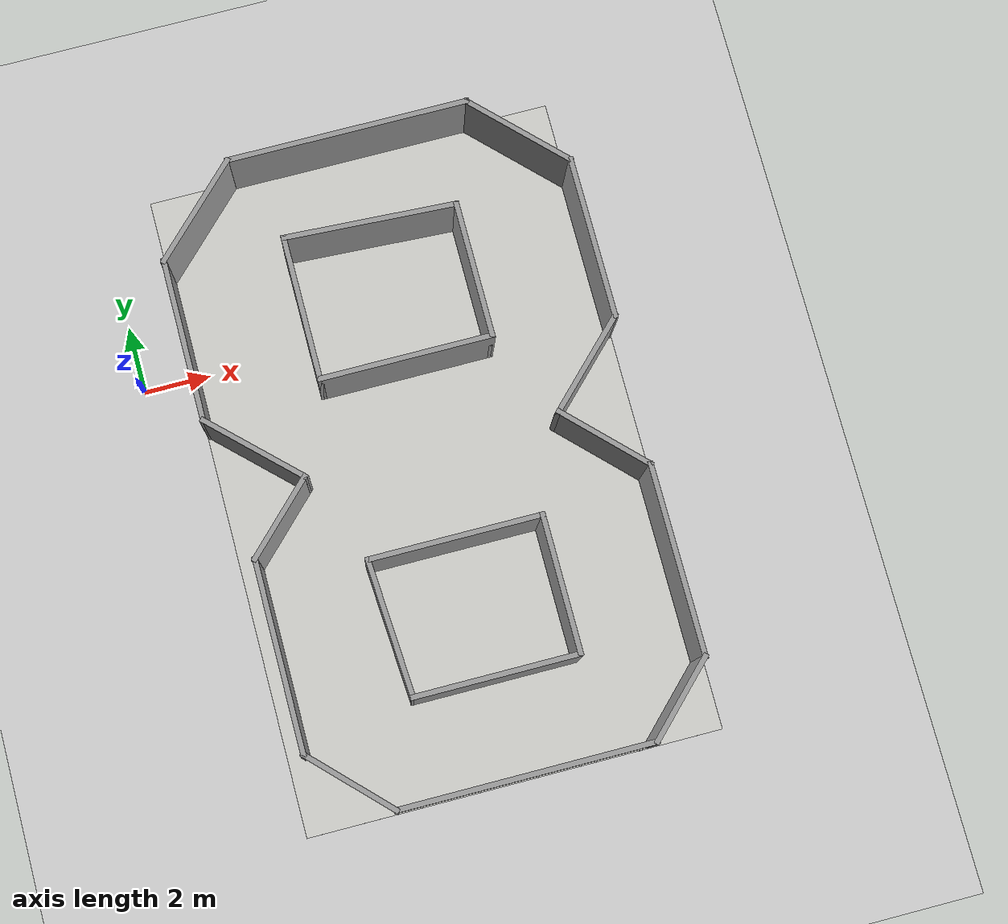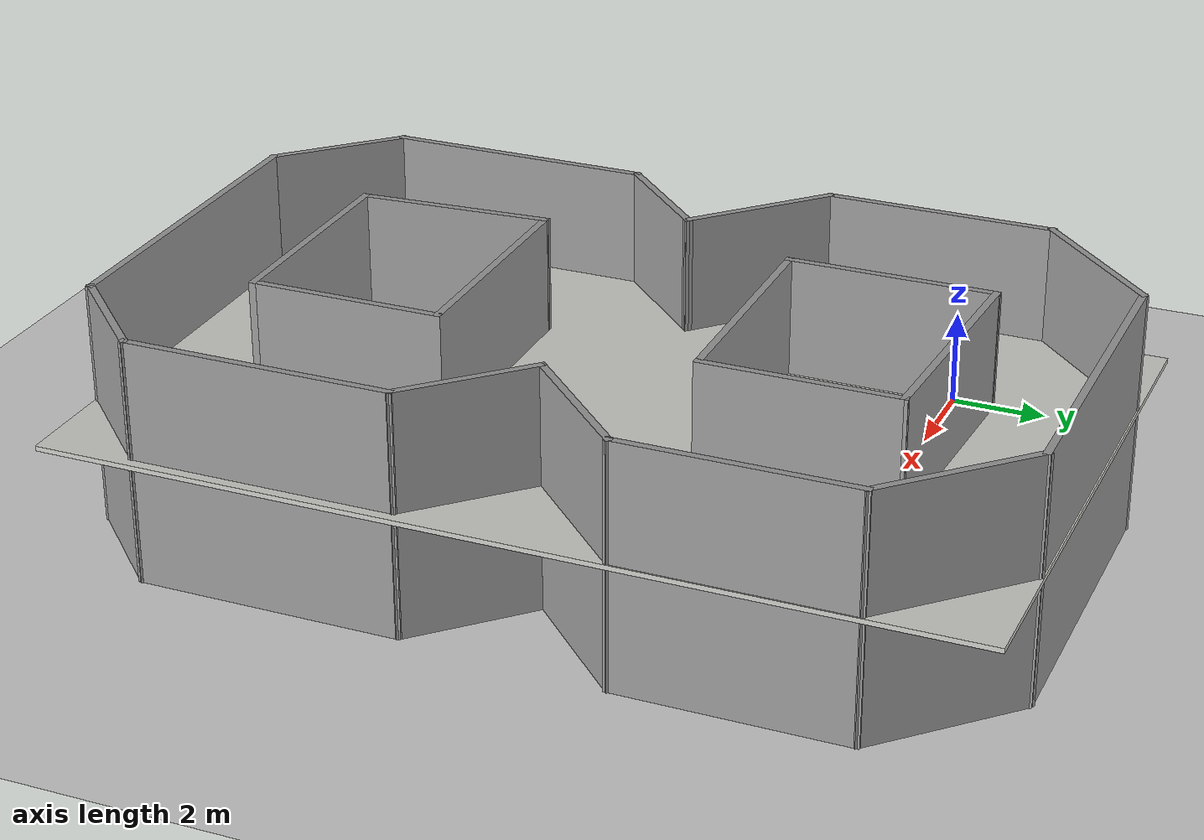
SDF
<sdf version="1.6">
 <world name="default">
  <light name="sun" type="directional">
   <pose>0 0 10 0 -0 0</pose>
   <diffuse>0.8 0.8 0.8 1</diffuse>
   <specular>0.1 0.1 0.1 1</specular>
   <attenuation>
    <range>1000</range>
    <constant>0.9</constant>
    <linear>0.01</linear>
    <quadratic>0.001</quadratic>
   </attenuation>
   <direction>-0.5 0.5 -1</direction>
  </light>
  <model name="ground_plane">
   <static>1</static>
   <link name="link">
    <collision name="collision">
     <geometry><plane><normal>0 0 1</normal><size>100 100</size></plane></geometry>
     <surface><friction><ode><mu>100</mu><mu2>50</mu2></ode></friction></surface>
    </collision>
    <visual name="visual">
     <cast_shadows>0</cast_shadows>
     <geometry><plane><normal>0 0 1</normal><size>100 100</size></plane></geometry>
     <material>
      <script><uri>file://media/materials/scripts/gazebo.material</uri><name>Gazebo/Grey</name></script>
     </material>
    </visual>
   </link>
  </model>
  <gravity>0 0 -9.8</gravity>
  <magnetic_field>6e-06 2.3e-05 -4.2e-05</magnetic_field>
  <atmosphere type="adiabatic"/>
  <physics name="default_physics" default="0" type="ode">
   <max_step_size>0.001</max_step_size>
   <real_time_factor>1</real_time_factor>
   <real_time_update_rate>1000</real_time_update_rate>
  </physics>
  <scene><ambient>0.4 0.4 0.4 1</ambient><background>0.7 0.7 0.7 1</background><shadows>1</shadows></scene>
  <spherical_coordinates>
   <surface_model>EARTH_WGS84</surface_model>
   <latitude_deg>0</latitude_deg>
   <longitude_deg>0</longitude_deg>
   <elevation>0</elevation>
   <heading_deg>0</heading_deg>
  </spherical_coordinates>
  <model name="figure_8">
   <pose>7.52457 -4.53661 0 0 -0 0</pose>
   <link name="Floor_1">
    <collision name="Floor_1_Collision">
     <geometry><box><size>11.7997 18.5767 0.1</size></box></geometry>
     <pose>0 0 0.05 0 -0 0</pose>
    </collision>
    <visual name="Floor_1_Visual">
     <pose>0 0 0.05 0 -0 0</pose>
     <geometry><box><size>11.7997 18.5767 0.1</size></box></geometry>
     <material>
      <script><uri>file://media/materials/scripts/gazebo.material</uri><name>Gazebo/CeilingTiled</name></script>
      <ambient>0 0 0 1</ambient>
     </material>
    </visual>
    <pose>-0 0 2.5 0 -0 0</pose>
   </link>
   <link name="Wall_42">
    <collision name="Wall_42_Collision">
     <geometry><box><size>4.75 0.15 2.5</size></box></geometry>
     <pose>0 0 1.25 0 -0 0</pose>
    </collision>
    <visual name="Wall_42_Visual">
     <pose>0 0 1.25 0 -0 0</pose>
     <geometry><box><size>4.75 0.15 2.5</size></box></geometry>
     <material>
      <script><uri>file://media/materials/scripts/gazebo.material</uri><name>Gazebo/Grey</name></script>
      <ambient>1 1 1 1</ambient>
     </material>
    </visual>
    <pose>-5.79381 4.51348 0 0 -0 1.5708</pose>
   </link>
   <link name="Wall_43">
    <collision name="Wall_43_Collision">
     <geometry><box><size>3.5 0.15 2.5</size></box></geometry>
     <pose>0 0 1.25 0 -0 0</pose>
    </collision>
    <visual name="Wall_43_Visual">
     <pose>0 0 1.25 0 -0 0</pose>
     <geometry><box><size>3.5 0.15 2.5</size></box></geometry>
     <material>
      <script><uri>file://media/materials/scripts/gazebo.material</uri><name>Gazebo/Grey</name></script>
      <ambient>1 1 1 1</ambient>
     </material>
    </visual>
    <pose>-4.6094 7.99788 0 0 -0 0.785398</pose>
   </link>
   <link name="Wall_44">
    <collision name="Wall_44_Collision">
     <geometry><box><size>7 0.15 2.5</size></box></geometry>
     <pose>0 0 1.25 0 -0 0</pose>
    </collision>
    <visual name="Wall_44_Visual">
     <pose>0 0 1.25 0 -0 0</pose>
     <geometry><box><size>7 0.15 2.5</size></box></geometry>
     <material>
      <script><uri>file://media/materials/scripts/gazebo.material</uri><name>Gazebo/Grey</name></script>
      <ambient>1 1 1 1</ambient>
     </material>
    </visual>
    <pose>-0 9.18229 0 0 -0 0</pose>
   </link>
   <link name="Wall_45">
    <collision name="Wall_45_Collision">
     <geometry><box><size>3.5 0.15 2.5</size></box></geometry>
     <pose>0 0 1.25 0 -0 0</pose>
    </collision>
    <visual name="Wall_45_Visual">
     <pose>0 0 1.25 0 -0 0</pose>
     <geometry><box><size>3.5 0.15 2.5</size></box></geometry>
     <material>
      <script><uri>file://media/materials/scripts/gazebo.material</uri><name>Gazebo/Grey</name></script>
      <ambient>1 1 1 1</ambient>
     </material>
    </visual>
    <pose>4.6094 7.99788 0 0 0 -0.785398</pose>
   </link>
   <link name="Wall_46">
    <collision name="Wall_46_Collision">
     <geometry><box><size>4.75 0.15 2.5</size></box></geometry>
     <pose>0 0 1.25 0 -0 0</pose>
    </collision>
    <visual name="Wall_46_Visual">
     <pose>0 0 1.25 0 -0 0</pose>
     <geometry><box><size>4.75 0.15 2.5</size></box></geometry>
     <material>
      <script><uri>file://media/materials/scripts/gazebo.material</uri><name>Gazebo/Grey</name></script>
      <ambient>1 1 1 1</ambient>
     </material>
    </visual>
    <pose>5.79381 4.51348 0 0 0 -1.5708</pose>
   </link>
   <link name="Wall_47">
    <collision name="Wall_47_Collision">
     <geometry><box><size>3.25 0.15 2.5</size></box></geometry>
     <pose>0 0 1.25 0 -0 0</pose>
    </collision>
    <visual name="Wall_47_Visual">
     <pose>0 0 1.25 0 -0 0</pose>
     <geometry><box><size>3.25 0.15 2.5</size></box></geometry>
     <material>
      <script><uri>file://media/materials/scripts/gazebo.material</uri><name>Gazebo/Grey</name></script>
      <ambient>1 1 1 1</ambient>
     </material>
    </visual>
    <pose>4.69779 1.11746 0 0 0 -2.35619</pose>
   </link>
   <link name="Wall_48">
    <collision name="Wall_48_Collision">
     <geometry><box><size>3 0.15 2.5</size></box></geometry>
     <pose>0 0 1.25 0 -0 0</pose>
    </collision>
    <visual name="Wall_48_Visual">
     <pose>0 0 1.25 0 -0 0</pose>
     <geometry><box><size>3 0.15 2.5</size></box></geometry>
     <material>
      <script><uri>file://media/materials/scripts/gazebo.material</uri><name>Gazebo/Grey</name></script>
      <ambient>1 1 1 1</ambient>
     </material>
    </visual>
    <pose>4.6094 -0.986181 0 0 0 -0.785398</pose>
   </link>
   <link name="Wall_49">
    <collision name="Wall_49_Collision">
     <geometry><box><size>5.5 0.15 2.5</size></box></geometry>
     <pose>0 0 1.25 0 -0 0</pose>
    </collision>
    <visual name="Wall_49_Visual">
     <pose>0 0 1.25 0 -0 0</pose>
     <geometry><box><size>5.5 0.15 2.5</size></box></geometry>
     <material>
      <script><uri>file://media/materials/scripts/gazebo.material</uri><name>Gazebo/Grey</name></script>
      <ambient>1 1 1 1</ambient>
     </material>
    </visual>
    <pose>5.61703 -4.66881 0 0 0 -1.5708</pose>
   </link>
   <link name="Wall_50">
    <collision name="Wall_50_Collision">
     <geometry><box><size>2.75 0.15 2.5</size></box></geometry>
     <pose>0 0 1.25 0 -0 0</pose>
    </collision>
    <visual name="Wall_50_Visual">
     <pose>0 0 1.25 0 -0 0</pose>
     <geometry><box><size>2.75 0.15 2.5</size></box></geometry>
     <material>
      <script><uri>file://media/materials/scripts/gazebo.material</uri><name>Gazebo/Grey</name></script>
      <ambient>1 1 1 1</ambient>
     </material>
    </visual>
    <pose>4.69779 -8.26305 0 0 0 -2.35619</pose>
   </link>
   <link name="Wall_51">
    <collision name="Wall_51_Collision">
     <geometry><box><size>7.25 0.15 2.5</size></box></geometry>
     <pose>0 0 1.25 0 -0 0</pose>
    </collision>
    <visual name="Wall_51_Visual">
     <pose>0 0 1.25 0 -0 0</pose>
     <geometry><box><size>7.25 0.15 2.5</size></box></geometry>
     <material>
      <script><uri>file://media/materials/scripts/gazebo.material</uri><name>Gazebo/Grey</name></script>
      <ambient>1 1 1 1</ambient>
     </material>
    </visual>
    <pose>0.228553 -9.18229 0 0 -0 3.14159</pose>
   </link>
   <link name="Wall_52">
    <collision name="Wall_52_Collision">
     <geometry><box><size>3 0.15 2.5</size></box></geometry>
     <pose>0 0 1.25 0 -0 0</pose>
    </collision>
    <visual name="Wall_52_Visual">
     <pose>0 0 1.25 0 -0 0</pose>
     <geometry><box><size>3 0.15 2.5</size></box></geometry>
     <material>
      <script><uri>file://media/materials/scripts/gazebo.material</uri><name>Gazebo/Grey</name></script>
      <ambient>1 1 1 1</ambient>
     </material>
    </visual>
    <pose>-4.32907 -8.17466 0 0 -0 2.35619</pose>
   </link>
   <link name="Wall_53">
    <collision name="Wall_53_Collision">
     <geometry><box><size>5.5 0.15 2.5</size></box></geometry>
     <pose>0 0 1.25 0 -0 0</pose>
    </collision>
    <visual name="Wall_53_Visual">
     <pose>0 0 1.25 0 -0 0</pose>
     <geometry><box><size>5.5 0.15 2.5</size></box></geometry>
     <material>
      <script><uri>file://media/materials/scripts/gazebo.material</uri><name>Gazebo/Grey</name></script>
      <ambient>1 1 1 1</ambient>
     </material>
    </visual>
    <pose>-5.3367 -4.49203 0 0 -0 1.5708</pose>
   </link>
   <link name="Wall_54">
    <collision name="Wall_54_Collision">
     <geometry><box><size>2.75 0.15 2.5</size></box></geometry>
     <pose>0 0 1.25 0 -0 0</pose>
    </collision>
    <visual name="Wall_54_Visual">
     <pose>0 0 1.25 0 -0 0</pose>
     <geometry><box><size>2.75 0.15 2.5</size></box></geometry>
     <material>
      <script><uri>file://media/materials/scripts/gazebo.material</uri><name>Gazebo/Grey</name></script>
      <ambient>1 1 1 1</ambient>
     </material>
    </visual>
    <pose>-4.41746 -0.897792 0 0 -0 0.785398</pose>
   </link>
   <link name="Wall_55">
    <collision name="Wall_55_Collision">
     <geometry><box><size>3.32407 0.15 2.5</size></box></geometry>
     <pose>0 0 1.25 0 -0 0</pose>
    </collision>
    <visual name="Wall_55_Visual">
     <pose>0 0 1.25 0 -0 0</pose>
     <geometry><box><size>3.32407 0.15 2.5</size></box></geometry>
     <material>
      <script><uri>file://media/materials/scripts/gazebo.material</uri><name>Gazebo/Grey</name></script>
      <ambient>1 1 1 1</ambient>
     </material>
    </visual>
    <pose>-4.64602 1.11746 0 0 -0 2.37927</pose>
   </link>
   <link name="Wall_57">
    <collision name="Wall_57_Collision">
     <geometry><box><size>4.25 0.15 2.5</size></box></geometry>
     <pose>0 0 1.25 0 -0 0</pose>
    </collision>
    <visual name="Wall_57_Visual">
     <pose>0 0 1.25 0 -0 0</pose>
     <geometry><box><size>4.25 0.15 2.5</size></box></geometry>
     <material>
      <script><uri>file://media/materials/scripts/gazebo.material</uri><name>Gazebo/Grey</name></script>
      <ambient>1 1 1 1</ambient>
     </material>
    </visual>
    <pose>-2.44792 4.57721 0 0 0 -1.5708</pose>
   </link>
   <link name="Wall_58">
    <collision name="Wall_58_Collision">
     <geometry><box><size>5 0.15 2.5</size></box></geometry>
     <pose>0 0 1.25 0 -0 0</pose>
    </collision>
    <visual name="Wall_58_Visual">
     <pose>0 0 1.25 0 -0 0</pose>
     <geometry><box><size>5 0.15 2.5</size></box></geometry>
     <material>
      <script><uri>file://media/materials/scripts/gazebo.material</uri><name>Gazebo/Grey</name></script>
      <ambient>1 1 1 1</ambient>
     </material>
    </visual>
    <pose>-0.022916 2.52721 0 0 -0 0</pose>
   </link>
   <link name="Wall_59">
    <collision name="Wall_59_Collision">
     <geometry><box><size>4 0.15 2.5</size></box></geometry>
     <pose>0 0 1.25 0 -0 0</pose>
    </collision>
    <visual name="Wall_59_Visual">
     <pose>0 0 1.25 0 -0 0</pose>
     <geometry><box><size>4 0.15 2.5</size></box></geometry>
     <material>
      <script><uri>file://media/materials/scripts/gazebo.material</uri><name>Gazebo/Grey</name></script>
      <ambient>1 1 1 1</ambient>
     </material>
    </visual>
    <pose>2.40208 4.45221 0 0 -0 1.5708</pose>
   </link>
   <link name="Wall_60">
    <collision name="Wall_60_Collision">
     <geometry><box><size>5.00644 0.15 2.5</size></box></geometry>
     <pose>0 0 1.25 0 -0 0</pose>
    </collision>
    <visual name="Wall_60_Visual">
     <pose>0 0 1.25 0 -0 0</pose>
     <geometry><box><size>5.00644 0.15 2.5</size></box></geometry>
     <material>
      <script><uri>file://media/materials/scripts/gazebo.material</uri><name>Gazebo/Grey</name></script>
      <ambient>1 1 1 1</ambient>
     </material>
    </visual>
    <pose>-0.022916 6.50221 0 0 -0 3.09009</pose>
   </link>
   <link name="Wall_62">
    <collision name="Wall_62_Collision">
     <geometry><box><size>5 0.15 2.5</size></box></geometry>
     <pose>0 0 1.25 0 -0 0</pose>
    </collision>
    <visual name="Wall_62_Visual">
     <pose>0 0 1.25 0 -0 0</pose>
     <geometry><box><size>5 0.15 2.5</size></box></geometry>
     <material>
      <script><uri>file://media/materials/scripts/gazebo.material</uri><name>Gazebo/Grey</name></script>
      <ambient>1 1 1 1</ambient>
     </material>
    </visual>
    <pose>0.009588 -2.59312 0 0 -0 0</pose>
   </link>
   <link name="Wall_63">
    <collision name="Wall_63_Collision">
     <geometry><box><size>4 0.15 2.5</size></box></geometry>
     <pose>0 0 1.25 0 -0 0</pose>
    </collision>
    <visual name="Wall_63_Visual">
     <pose>0 0 1.25 0 -0 0</pose>
     <geometry><box><size>4 0.15 2.5</size></box></geometry>
     <material>
      <script><uri>file://media/materials/scripts/gazebo.material</uri><name>Gazebo/Grey</name></script>
      <ambient>1 1 1 1</ambient>
     </material>
    </visual>
    <pose>2.43459 -4.51812 0 0 0 -1.5708</pose>
   </link>
   <link name="Wall_64">
    <collision name="Wall_64_Collision">
     <geometry><box><size>4.75 0.15 2.5</size></box></geometry>
     <pose>0 0 1.25 0 -0 0</pose>
    </collision>
    <visual name="Wall_64_Visual">
     <pose>0 0 1.25 0 -0 0</pose>
     <geometry><box><size>4.75 0.15 2.5</size></box></geometry>
     <material>
      <script><uri>file://media/materials/scripts/gazebo.material</uri><name>Gazebo/Grey</name></script>
      <ambient>1 1 1 1</ambient>
     </material>
    </visual>
    <pose>0.134588 -6.44312 0 0 -0 3.14159</pose>
   </link>
   <link name="Wall_65">
    <collision name="Wall_65_Collision">
     <geometry><box><size>4.00811 0.15 2.5</size></box></geometry>
     <pose>0 0 1.25 0 -0 0</pose>
    </collision>
    <visual name="Wall_65_Visual">
     <pose>0 0 1.25 0 -0 0</pose>
     <geometry><box><size>4.00811 0.15 2.5</size></box></geometry>
     <material>
      <script><uri>file://media/materials/scripts/gazebo.material</uri><name>Gazebo/Grey</name></script>
      <ambient>1 1 1 1</ambient>
     </material>
    </visual>
    <pose>-2.29041 -4.51812 0 0 -0 1.63564</pose>
   </link>
   <link name="Wall_67">
    <collision name="Wall_67_Collision">
     <geometry><box><size>4.75 0.15 2.5</size></box></geometry>
     <pose>0 0 1.25 0 -0 0</pose>
    </collision>
    <visual name="Wall_67_Visual">
     <pose>0 0 1.25 0 -0 0</pose>
     <geometry><box><size>4.75 0.15 2.5</size></box></geometry>
     <material>
      <script><uri>file://media/materials/scripts/gazebo.material</uri><name>Gazebo/Grey</name></script>
      <ambient>1 1 1 1</ambient>
     </material>
    </visual>
    <pose>-5.79381 4.51348 2.5 0 -0 1.5708</pose>
   </link>
   <link name="Wall_68">
    <collision name="Wall_68_Collision">
     <geometry><box><size>3.5 0.15 2.5</size></box></geometry>
     <pose>0 0 1.25 0 -0 0</pose>
    </collision>
    <visual name="Wall_68_Visual">
     <pose>0 0 1.25 0 -0 0</pose>
     <geometry><box><size>3.5 0.15 2.5</size></box></geometry>
     <material>
      <script><uri>file://media/materials/scripts/gazebo.material</uri><name>Gazebo/Grey</name></script>
      <ambient>1 1 1 1</ambient>
     </material>
    </visual>
    <pose>-4.6094 7.99788 2.5 0 -0 0.785398</pose>
   </link>
   <link name="Wall_69">
    <collision name="Wall_69_Collision">
     <geometry><box><size>7 0.15 2.5</size></box></geometry>
     <pose>0 0 1.25 0 -0 0</pose>
    </collision>
    <visual name="Wall_69_Visual">
     <pose>0 0 1.25 0 -0 0</pose>
     <geometry><box><size>7 0.15 2.5</size></box></geometry>
     <material>
      <script><uri>file://media/materials/scripts/gazebo.material</uri><name>Gazebo/Grey</name></script>
      <ambient>1 1 1 1</ambient>
     </material>
    </visual>
    <pose>-0 9.18229 2.5 0 -0 0</pose>
   </link>
   <link name="Wall_70">
    <collision name="Wall_70_Collision">
     <geometry><box><size>3.5 0.15 2.5</size></box></geometry>
     <pose>0 0 1.25 0 -0 0</pose>
    </collision>
    <visual name="Wall_70_Visual">
     <pose>0 0 1.25 0 -0 0</pose>
     <geometry><box><size>3.5 0.15 2.5</size></box></geometry>
     <material>
      <script><uri>file://media/materials/scripts/gazebo.material</uri><name>Gazebo/Grey</name></script>
      <ambient>1 1 1 1</ambient>
     </material>
    </visual>
    <pose>4.6094 7.99788 2.5 0 0 -0.785398</pose>
   </link>
   <link name="Wall_71">
    <collision name="Wall_71_Collision">
     <geometry><box><size>4.75 0.15 2.5</size></box></geometry>
     <pose>0 0 1.25 0 -0 0</pose>
    </collision>
    <visual name="Wall_71_Visual">
     <pose>0 0 1.25 0 -0 0</pose>
     <geometry><box><size>4.75 0.15 2.5</size></box></geometry>
     <material>
      <script><uri>file://media/materials/scripts/gazebo.material</uri><name>Gazebo/Grey</name></script>
      <ambient>1 1 1 1</ambient>
     </material>
    </visual>
    <pose>5.79381 4.51348 2.5 0 0 -1.5708</pose>
   </link>
   <link name="Wall_72">
    <collision name="Wall_72_Collision">
     <geometry><box><size>3.25 0.15 2.5</size></box></geometry>
     <pose>0 0 1.25 0 -0 0</pose>
    </collision>
    <visual name="Wall_72_Visual">
     <pose>0 0 1.25 0 -0 0</pose>
     <geometry><box><size>3.25 0.15 2.5</size></box></geometry>
     <material>
      <script><uri>file://media/materials/scripts/gazebo.material</uri><name>Gazebo/Grey</name></script>
      <ambient>1 1 1 1</ambient>
     </material>
    </visual>
    <pose>4.69779 1.11746 2.5 0 0 -2.35619</pose>
   </link>
   <link name="Wall_73">
    <collision name="Wall_73_Collision">
     <geometry><box><size>3 0.15 2.5</size></box></geometry>
     <pose>0 0 1.25 0 -0 0</pose>
    </collision>
    <visual name="Wall_73_Visual">
     <pose>0 0 1.25 0 -0 0</pose>
     <geometry><box><size>3 0.15 2.5</size></box></geometry>
     <material>
      <script><uri>file://media/materials/scripts/gazebo.material</uri><name>Gazebo/Grey</name></script>
      <ambient>1 1 1 1</ambient>
     </material>
    </visual>
    <pose>4.6094 -0.986181 2.5 0 0 -0.785398</pose>
   </link>
   <link name="Wall_74">
    <collision name="Wall_74_Collision">
     <geometry><box><size>5.5 0.15 2.5</size></box></geometry>
     <pose>0 0 1.25 0 -0 0</pose>
    </collision>
    <visual name="Wall_74_Visual">
     <pose>0 0 1.25 0 -0 0</pose>
     <geometry><box><size>5.5 0.15 2.5</size></box></geometry>
     <material>
      <script><uri>file://media/materials/scripts/gazebo.material</uri><name>Gazebo/Grey</name></script>
      <ambient>1 1 1 1</ambient>
     </material>
    </visual>
    <pose>5.61703 -4.66881 2.5 0 0 -1.5708</pose>
   </link>
   <link name="Wall_75">
    <collision name="Wall_75_Collision">
     <geometry><box><size>2.75 0.15 2.5</size></box></geometry>
     <pose>0 0 1.25 0 -0 0</pose>
    </collision>
    <visual name="Wall_75_Visual">
     <pose>0 0 1.25 0 -0 0</pose>
     <geometry><box><size>2.75 0.15 2.5</size></box></geometry>
     <material>
      <script><uri>file://media/materials/scripts/gazebo.material</uri><name>Gazebo/Grey</name></script>
      <ambient>1 1 1 1</ambient>
     </material>
    </visual>
    <pose>4.69779 -8.26305 2.5 0 0 -2.35619</pose>
   </link>
   <link name="Wall_76">
    <collision name="Wall_76_Collision">
     <geometry><box><size>7.25 0.15 2.5</size></box></geometry>
     <pose>0 0 1.25 0 -0 0</pose>
    </collision>
    <visual name="Wall_76_Visual">
     <pose>0 0 1.25 0 -0 0</pose>
     <geometry><box><size>7.25 0.15 2.5</size></box></geometry>
     <material>
      <script><uri>file://media/materials/scripts/gazebo.material</uri><name>Gazebo/Grey</name></script>
      <ambient>1 1 1 1</ambient>
     </material>
    </visual>
    <pose>0.228553 -9.18229 2.5 0 -0 3.14159</pose>
   </link>
   <link name="Wall_77">
    <collision name="Wall_77_Collision">
     <geometry><box><size>3 0.15 2.5</size></box></geometry>
     <pose>0 0 1.25 0 -0 0</pose>
    </collision>
    <visual name="Wall_77_Visual">
     <pose>0 0 1.25 0 -0 0</pose>
     <geometry><box><size>3 0.15 2.5</size></box></geometry>
     <material>
      <script><uri>file://media/materials/scripts/gazebo.material</uri><name>Gazebo/Grey</name></script>
      <ambient>1 1 1 1</ambient>
     </material>
    </visual>
    <pose>-4.32907 -8.17466 2.5 0 -0 2.35619</pose>
   </link>
   <link name="Wall_78">
    <collision name="Wall_78_Collision">
     <geometry><box><size>5.5 0.15 2.5</size></box></geometry>
     <pose>0 0 1.25 0 -0 0</pose>
    </collision>
    <visual name="Wall_78_Visual">
     <pose>0 0 1.25 0 -0 0</pose>
     <geometry><box><size>5.5 0.15 2.5</size></box></geometry>
     <material>
      <script><uri>file://media/materials/scripts/gazebo.material</uri><name>Gazebo/Grey</name></script>
      <ambient>1 1 1 1</ambient>
     </material>
    </visual>
    <pose>-5.3367 -4.49203 2.5 0 -0 1.5708</pose>
   </link>
   <link name="Wall_79">
    <collision name="Wall_79_Collision">
     <geometry><box><size>2.75 0.15 2.5</size></box></geometry>
     <pose>0 0 1.25 0 -0 0</pose>
    </collision>
    <visual name="Wall_79_Visual">
     <pose>0 0 1.25 0 -0 0</pose>
     <geometry><box><size>2.75 0.15 2.5</size></box></geometry>
     <material>
      <script><uri>file://media/materials/scripts/gazebo.material</uri><name>Gazebo/Grey</name></script>
      <ambient>1 1 1 1</ambient>
     </material>
    </visual>
    <pose>-4.41746 -0.897792 2.5 0 -0 0.785398</pose>
   </link>
   <link name="Wall_80">
    <collision name="Wall_80_Collision">
     <geometry><box><size>3.32407 0.15 2.5</size></box></geometry>
     <pose>0 0 1.25 0 -0 0</pose>
    </collision>
    <visual name="Wall_80_Visual">
     <pose>0 0 1.25 0 -0 0</pose>
     <geometry><box><size>3.32407 0.15 2.5</size></box></geometry>
     <material>
      <script><uri>file://media/materials/scripts/gazebo.material</uri><name>Gazebo/Grey</name></script>
      <ambient>1 1 1 1</ambient>
     </material>
    </visual>
    <pose>-4.64602 1.11746 2.5 0 -0 2.37927</pose>
   </link>
   <link name="Wall_81">
    <collision name="Wall_81_Collision">
     <geometry><box><size>4.25 0.15 2.5</size></box></geometry>
     <pose>0 0 1.25 0 -0 0</pose>
    </collision>
    <visual name="Wall_81_Visual">
     <pose>0 0 1.25 0 -0 0</pose>
     <geometry><box><size>4.25 0.15 2.5</size></box></geometry>
     <material>
      <script><uri>file://media/materials/scripts/gazebo.material</uri><name>Gazebo/Grey</name></script>
      <ambient>1 1 1 1</ambient>
     </material>
    </visual>
    <pose>-2.44792 4.57721 2.5 0 0 -1.5708</pose>
   </link>
   <link name="Wall_82">
    <collision name="Wall_82_Collision">
     <geometry><box><size>5 0.15 2.5</size></box></geometry>
     <pose>0 0 1.25 0 -0 0</pose>
    </collision>
    <visual name="Wall_82_Visual">
     <pose>0 0 1.25 0 -0 0</pose>
     <geometry><box><size>5 0.15 2.5</size></box></geometry>
     <material>
      <script><uri>file://media/materials/scripts/gazebo.material</uri><name>Gazebo/Grey</name></script>
      <ambient>1 1 1 1</ambient>
     </material>
    </visual>
    <pose>-0.022916 2.52721 2.5 0 -0 0</pose>
   </link>
   <link name="Wall_83">
    <collision name="Wall_83_Collision">
     <geometry><box><size>4 0.15 2.5</size></box></geometry>
     <pose>0 0 1.25 0 -0 0</pose>
    </collision>
    <visual name="Wall_83_Visual">
     <pose>0 0 1.25 0 -0 0</pose>
     <geometry><box><size>4 0.15 2.5</size></box></geometry>
     <material>
      <script><uri>file://media/materials/scripts/gazebo.material</uri><name>Gazebo/Grey</name></script>
      <ambient>1 1 1 1</ambient>
     </material>
    </visual>
    <pose>2.40208 4.45221 2.5 0 -0 1.5708</pose>
   </link>
   <link name="Wall_84">
    <collision name="Wall_84_Collision">
     <geometry><box><size>5.00644 0.15 2.5</size></box></geometry>
     <pose>0 0 1.25 0 -0 0</pose>
    </collision>
    <visual name="Wall_84_Visual">
     <pose>0 0 1.25 0 -0 0</pose>
     <geometry><box><size>5.00644 0.15 2.5</size></box></geometry>
     <material>
      <script><uri>file://media/materials/scripts/gazebo.material</uri><name>Gazebo/Grey</name></script>
      <ambient>1 1 1 1</ambient>
     </material>
    </visual>
    <pose>-0.022916 6.50221 2.5 0 -0 3.09009</pose>
   </link>
   <link name="Wall_85">
    <collision name="Wall_85_Collision">
     <geometry><box><size>5 0.15 2.5</size></box></geometry>
     <pose>0 0 1.25 0 -0 0</pose>
    </collision>
    <visual name="Wall_85_Visual">
     <pose>0 0 1.25 0 -0 0</pose>
     <geometry><box><size>5 0.15 2.5</size></box></geometry>
     <material>
      <script><uri>file://media/materials/scripts/gazebo.material</uri><name>Gazebo/Grey</name></script>
      <ambient>1 1 1 1</ambient>
     </material>
    </visual>
    <pose>0.009588 -2.59312 2.5 0 -0 0</pose>
   </link>
   <link name="Wall_86">
    <collision name="Wall_86_Collision">
     <geometry><box><size>4 0.15 2.5</size></box></geometry>
     <pose>0 0 1.25 0 -0 0</pose>
    </collision>
    <visual name="Wall_86_Visual">
     <pose>0 0 1.25 0 -0 0</pose>
     <geometry><box><size>4 0.15 2.5</size></box></geometry>
     <material>
      <script><uri>file://media/materials/scripts/gazebo.material</uri><name>Gazebo/Grey</name></script>
      <ambient>1 1 1 1</ambient>
     </material>
    </visual>
    <pose>2.43459 -4.51812 2.5 0 0 -1.5708</pose>
   </link>
   <link name="Wall_87">
    <collision name="Wall_87_Collision">
     <geometry><box><size>4.75 0.15 2.5</size></box></geometry>
     <pose>0 0 1.25 0 -0 0</pose>
    </collision>
    <visual name="Wall_87_Visual">
     <pose>0 0 1.25 0 -0 0</pose>
     <geometry><box><size>4.75 0.15 2.5</size></box></geometry>
     <material>
      <script><uri>file://media/materials/scripts/gazebo.material</uri><name>Gazebo/Grey</name></script>
      <ambient>1 1 1 1</ambient>
     </material>
    </visual>
    <pose>0.134588 -6.44312 2.5 0 -0 3.14159</pose>
   </link>
   <link name="Wall_88">
    <collision name="Wall_88_Collision">
     <geometry><box><size>4.00811 0.15 2.5</size></box></geometry>
     <pose>0 0 1.25 0 -0 0</pose>
    </collision>
    <visual name="Wall_88_Visual">
     <pose>0 0 1.25 0 -0 0</pose>
     <geometry><box><size>4.00811 0.15 2.5</size></box></geometry>
     <material>
      <script><uri>file://media/materials/scripts/gazebo.material</uri><name>Gazebo/Grey</name></script>
      <ambient>1 1 1 1</ambient>
     </material>
    </visual>
    <pose>-2.29041 -4.51812 2.5 0 -0 1.63564</pose>
   </link>
   <static>1</static>
  </model>
 </world>
</sdf>
